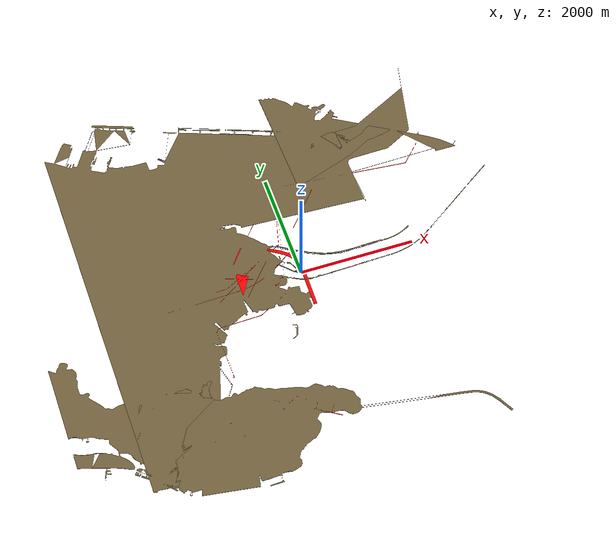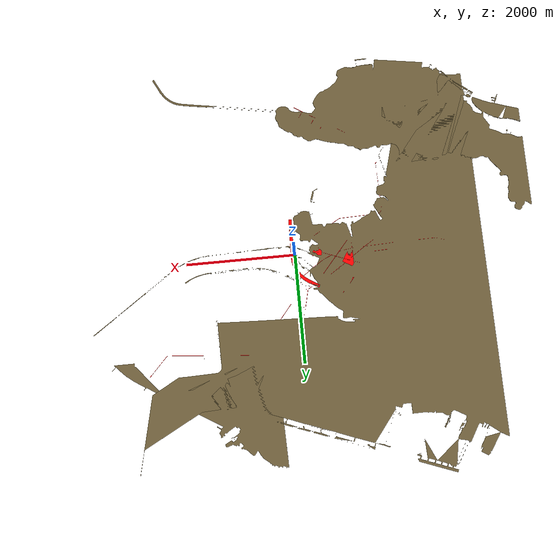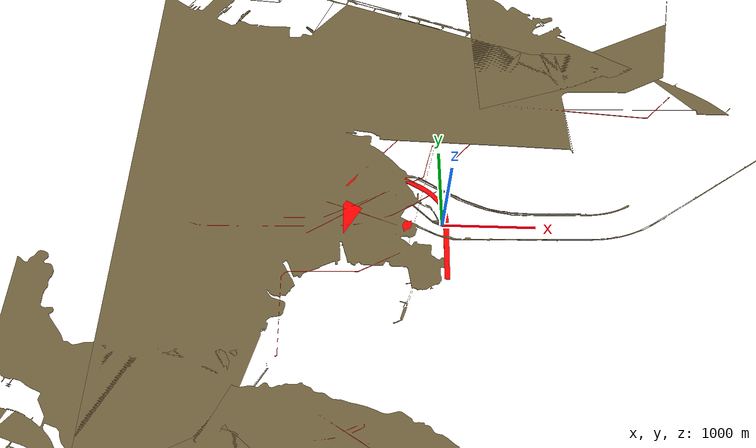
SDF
<sdf version="1.9">
 <world name="ccs_open_water_crop">
  <physics name="4ms" type="dart">
   <max_step_size>0.004</max_step_size>
   <real_time_factor>1.0</real_time_factor>
  </physics>
  <plugin filename="gz-sim-physics-system" name="gz::sim::systems::Physics"/>
  <plugin filename="gz-sim-user-commands-system" name="gz::sim::systems::UserCommands"/>
  <plugin filename="gz-sim-sensors-system" name="gz::sim::systems::Sensors">
   <render_engine>ogre2</render_engine>
   <disable_on_drained_battery>true</disable_on_drained_battery>
  </plugin>
  <plugin filename="gz-sim-imu-system" name="gz::sim::systems::Imu"/>
  <plugin filename="gz-sim-magnetometer-system" name="gz::sim::systems::Magnetometer"/>
  <plugin filename="gz-sim-forcetorque-system" name="gz::sim::systems::ForceTorque"/>
  <plugin filename="gz-sim-particle-emitter-system" name="gz::sim::systems::ParticleEmitter"/>
  <plugin filename="gz-sim-scene-broadcaster-system" name="gz::sim::systems::SceneBroadcaster"/>
  <plugin filename="gz-sim-contact-system" name="gz::sim::systems::Contact"/>
  <plugin filename="gz-sim-navsat-system" name="gz::sim::systems::NavSat"/>
  <scene><grid>false</grid><ambient>0.15 0.15 0.15</ambient><background>0.8 0.8 0.8</background></scene>
  <spherical_coordinates>
   <surface_model>EARTH_WGS84</surface_model>
   <world_frame_orientation>ENU</world_frame_orientation>
   <latitude_deg>34.692120</latitude_deg>
   <longitude_deg>119.481403</longitude_deg>
   <elevation>0.0</elevation>
   <heading_deg>0.0</heading_deg>
  </spherical_coordinates>
  <light type="directional" name="sun">
   <pose>0 0 10 0 0 0</pose>
   <diffuse>0.8 0.8 0.8 1</diffuse>
   <specular>0.2 0.2 0.2 1</specular>
   <attenuation>
    <range>1000</range>
    <constant>0.9</constant>
    <linear>0.01</linear>
    <quadratic>0.001</quadratic>
   </attenuation>
   <direction>-0.5 0.1 -0.9</direction>
  </light>
  <include><name>CCS ENC Chart Obstacles</name><uri>model://ccs_chart_obstacles_enc_5km</uri></include>
  <plugin filename="libPublisherPlugin.so" name="vrx::PublisherPlugin">
   <message type="gz.msgs.Param" topic="/vrx/wavefield/parameters" every="2.0">params { key: "direction" value { type: DOUBLE double_value: 0.0 } }
        params { key: "gain" value { type: DOUBLE double_value: 0.3 } }
        params { key: "period" value { type: DOUBLE double_value: 5 } }
        params { key: "steepness" value { type: DOUBLE double_value: 0 } }</message>
  </plugin>
 </world>
</sdf>

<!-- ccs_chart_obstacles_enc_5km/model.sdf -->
<sdf version="1.9">
  <model name="ccs_chart_obstacles_enc_5km">
    <static>true</static>
    <link name="chart_obstacle_001">
      <pose>-1444.372646 1082.602142 0 0 0 0</pose>
      <visual name="visual">
        <geometry>
          <mesh>
            <uri>meshes/chart_obstacle_001.obj</uri>
          </mesh>
        </geometry>
        <material>
          <ambient>0.32 0.28 0.18 1</ambient>
          <diffuse>0.42 0.36 0.22 1</diffuse>
        </material>
      </visual>
      <collision name="collision">
        <geometry>
          <mesh>
            <uri>meshes/chart_obstacle_001.obj</uri>
          </mesh>
        </geometry>
      </collision>
    </link>
    <link name="chart_obstacle_002">
      <pose>-2363.378606 -2361.534128 0 0 0 0</pose>
      <visual name="visual">
        <geometry>
          <mesh>
            <uri>meshes/chart_obstacle_002.obj</uri>
          </mesh>
        </geometry>
        <material>
          <ambient>0.32 0.28 0.18 1</ambient>
          <diffuse>0.42 0.36 0.22 1</diffuse>
        </material>
      </visual>
      <collision name="collision">
        <geometry>
          <mesh>
            <uri>meshes/chart_obstacle_002.obj</uri>
          </mesh>
        </geometry>
      </collision>
    </link>
    <link name="chart_obstacle_003">
      <pose>1481.363891 2472.400333 0 0 0 0</pose>
      <visual name="visual">
        <geometry>
          <mesh>
            <uri>meshes/chart_obstacle_003.obj</uri>
          </mesh>
        </geometry>
        <material>
          <ambient>0.32 0.28 0.18 1</ambient>
          <diffuse>0.42 0.36 0.22 1</diffuse>
        </material>
      </visual>
      <collision name="collision">
        <geometry>
          <mesh>
            <uri>meshes/chart_obstacle_003.obj</uri>
          </mesh>
        </geometry>
      </collision>
    </link>
    <link name="chart_obstacle_004">
      <pose>-2048.691670 -2486.928484 0 0 0 0</pose>
      <visual name="visual">
        <geometry>
          <mesh>
            <uri>meshes/chart_obstacle_004.obj</uri>
          </mesh>
        </geometry>
        <material>
          <ambient>0.32 0.28 0.18 1</ambient>
          <diffuse>0.42 0.36 0.22 1</diffuse>
        </material>
      </visual>
      <collision name="collision">
        <geometry>
          <mesh>
            <uri>meshes/chart_obstacle_004.obj</uri>
          </mesh>
        </geometry>
      </collision>
    </link>
    <link name="chart_obstacle_005">
      <pose>-47.629930 42.000000 0 0 0 0</pose>
      <visual name="visual">
        <pose>0 0 0 1.57079 0 0</pose>
        <geometry>
          <mesh>
            <uri>model://mb_marker_buoy_red/meshes/mb_marker_buoy.dae</uri>
            <scale>2 2 2</scale>
          </mesh>
        </geometry>
        <material>
          <ambient>0.8 0.0 0.0 1</ambient>
          <diffuse>1.0 0.0 0.0 1</diffuse>
        </material>
      </visual>
      <collision name="collision">
        <geometry>
          <mesh>
            <uri>meshes/chart_obstacle_005.obj</uri>
          </mesh>
        </geometry>
      </collision>
    </link>
    <link name="chart_obstacle_006">
      <pose>-1004.790020 120.377649 0 0 0 0</pose>
      <visual name="visual">
        <pose>0 0 0 1.57079 0 0</pose>
        <geometry>
          <mesh>
            <uri>model://mb_marker_buoy_red/meshes/mb_marker_buoy.dae</uri>
            <scale>2 2 2</scale>
          </mesh>
        </geometry>
        <material>
          <ambient>0.8 0.0 0.0 1</ambient>
          <diffuse>1.0 0.0 0.0 1</diffuse>
        </material>
      </visual>
      <collision name="collision">
        <geometry>
          <mesh>
            <uri>meshes/chart_obstacle_006.obj</uri>
          </mesh>
        </geometry>
      </collision>
    </link>
    <link name="chart_obstacle_007">
      <pose>-800.116101 -13.573786 0 0 0 0</pose>
      <visual name="visual">
        <pose>0 0 0 1.57079 0 0</pose>
        <geometry>
          <mesh>
            <uri>model://mb_marker_buoy_red/meshes/mb_marker_buoy.dae</uri>
            <scale>2 2 2</scale>
          </mesh>
        </geometry>
        <material>
          <ambient>0.8 0.0 0.0 1</ambient>
          <diffuse>1.0 0.0 0.0 1</diffuse>
        </material>
      </visual>
      <collision name="collision">
        <geometry>
          <mesh>
            <uri>meshes/chart_obstacle_007.obj</uri>
          </mesh>
        </geometry>
      </collision>
    </link>
    <link name="chart_obstacle_008">
      <pose>393.573786 1336.116101 0 0 0 0</pose>
      <visual name="visual">
        <pose>0 0 0 1.57079 0 0</pose>
        <geometry>
          <mesh>
            <uri>model://mb_marker_buoy_red/meshes/mb_marker_buoy.dae</uri>
            <scale>2 2 2</scale>
          </mesh>
        </geometry>
        <material>
          <ambient>0.8 0.0 0.0 1</ambient>
          <diffuse>1.0 0.0 0.0 1</diffuse>
        </material>
      </visual>
      <collision name="collision">
        <geometry>
          <mesh>
            <uri>meshes/chart_obstacle_008.obj</uri>
          </mesh>
        </geometry>
      </collision>
    </link>
    <link name="chart_obstacle_009">
      <pose>-426.544574 -25.846768 0 0 0 0</pose>
      <visual name="visual">
        <pose>0 0 0 1.57079 0 0</pose>
        <geometry>
          <mesh>
            <uri>model://mb_marker_buoy_red/meshes/mb_marker_buoy.dae</uri>
            <scale>2 2 2</scale>
          </mesh>
        </geometry>
        <material>
          <ambient>0.8 0.0 0.0 1</ambient>
          <diffuse>1.0 0.0 0.0 1</diffuse>
        </material>
      </visual>
      <collision name="collision">
        <geometry>
          <mesh>
            <uri>meshes/chart_obstacle_009.obj</uri>
          </mesh>
        </geometry>
      </collision>
    </link>
    <link name="chart_obstacle_010">
      <pose>-1309.455426 45.846768 0 0 0 0</pose>
      <visual name="visual">
        <pose>0 0 0 1.57079 0 0</pose>
        <geometry>
          <mesh>
            <uri>model://mb_marker_buoy_red/meshes/mb_marker_buoy.dae</uri>
            <scale>2 2 2</scale>
          </mesh>
        </geometry>
        <material>
          <ambient>0.8 0.0 0.0 1</ambient>
          <diffuse>1.0 0.0 0.0 1</diffuse>
        </material>
      </visual>
      <collision name="collision">
        <geometry>
          <mesh>
            <uri>meshes/chart_obstacle_010.obj</uri>
          </mesh>
        </geometry>
      </collision>
    </link>
    <link name="chart_obstacle_011">
      <pose>-678.153232 -2481.455426 0 0 0 0</pose>
      <visual name="visual">
        <pose>0 0 0 1.57079 0 0</pose>
        <geometry>
          <mesh>
            <uri>model://mb_marker_buoy_red/meshes/mb_marker_buoy.dae</uri>
            <scale>2 2 2</scale>
          </mesh>
        </geometry>
        <material>
          <ambient>0.8 0.0 0.0 1</ambient>
          <diffuse>1.0 0.0 0.0 1</diffuse>
        </material>
      </visual>
      <collision name="collision">
        <geometry>
          <mesh>
            <uri>meshes/chart_obstacle_011.obj</uri>
          </mesh>
        </geometry>
      </collision>
    </link>
    <link name="chart_obstacle_012">
      <pose>-790.153232 48.544574 0 0 0 0</pose>
      <visual name="visual">
        <pose>0 0 0 1.57079 0 0</pose>
        <geometry>
          <mesh>
            <uri>model://mb_marker_buoy_red/meshes/mb_marker_buoy.dae</uri>
            <scale>2 2 2</scale>
          </mesh>
        </geometry>
        <material>
          <ambient>0.8 0.0 0.0 1</ambient>
          <diffuse>1.0 0.0 0.0 1</diffuse>
        </material>
      </visual>
      <collision name="collision">
        <geometry>
          <mesh>
            <uri>meshes/chart_obstacle_012.obj</uri>
          </mesh>
        </geometry>
      </collision>
    </link>
    <link name="chart_obstacle_013">
      <pose>451.455426 1262.153232 0 0 0 0</pose>
      <visual name="visual">
        <pose>0 0 0 1.57079 0 0</pose>
        <geometry>
          <mesh>
            <uri>model://mb_marker_buoy_red/meshes/mb_marker_buoy.dae</uri>
            <scale>2 2 2</scale>
          </mesh>
        </geometry>
        <material>
          <ambient>0.8 0.0 0.0 1</ambient>
          <diffuse>1.0 0.0 0.0 1</diffuse>
        </material>
      </visual>
      <collision name="collision">
        <geometry>
          <mesh>
            <uri>meshes/chart_obstacle_013.obj</uri>
          </mesh>
        </geometry>
      </collision>
    </link>
    <link name="chart_obstacle_014">
      <pose>-1062.292555 -2342.922693 0 0 0 0</pose>
      <visual name="visual">
        <pose>0 0 0 1.57079 0 0</pose>
        <geometry>
          <mesh>
            <uri>model://mb_marker_buoy_red/meshes/mb_marker_buoy.dae</uri>
            <scale>2 2 2</scale>
          </mesh>
        </geometry>
        <material>
          <ambient>0.8 0.0 0.0 1</ambient>
          <diffuse>1.0 0.0 0.0 1</diffuse>
        </material>
      </visual>
      <collision name="collision">
        <geometry>
          <mesh>
            <uri>meshes/chart_obstacle_014.obj</uri>
          </mesh>
        </geometry>
      </collision>
    </link>
    <link name="chart_obstacle_015">
      <pose>-1062.292555 125.077307 0 0 0 0</pose>
      <visual name="visual">
        <pose>0 0 0 1.57079 0 0</pose>
        <geometry>
          <mesh>
            <uri>model://mb_marker_buoy_red/meshes/mb_marker_buoy.dae</uri>
            <scale>2 2 2</scale>
          </mesh>
        </geometry>
        <material>
          <ambient>0.8 0.0 0.0 1</ambient>
          <diffuse>1.0 0.0 0.0 1</diffuse>
        </material>
      </visual>
      <collision name="collision">
        <geometry>
          <mesh>
            <uri>meshes/chart_obstacle_015.obj</uri>
          </mesh>
        </geometry>
      </collision>
    </link>
    <link name="chart_obstacle_016">
      <pose>-816.000000 116.000000 0 0 0 0</pose>
      <visual name="visual">
        <pose>0 0 0 1.57079 0 0</pose>
        <geometry>
          <mesh>
            <uri>model://mb_marker_buoy_red/meshes/mb_marker_buoy.dae</uri>
            <scale>2 2 2</scale>
          </mesh>
        </geometry>
        <material>
          <ambient>0.8 0.0 0.0 1</ambient>
          <diffuse>1.0 0.0 0.0 1</diffuse>
        </material>
      </visual>
      <collision name="collision">
        <geometry>
          <mesh>
            <uri>meshes/chart_obstacle_016.obj</uri>
          </mesh>
        </geometry>
      </collision>
    </link>
  </model>
</sdf>
